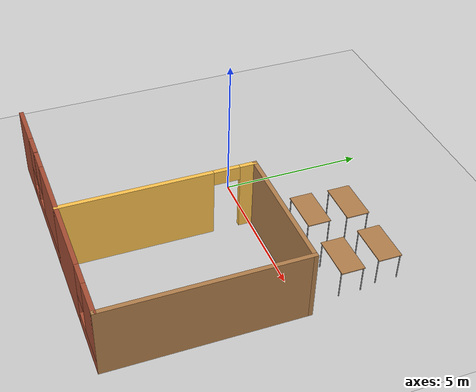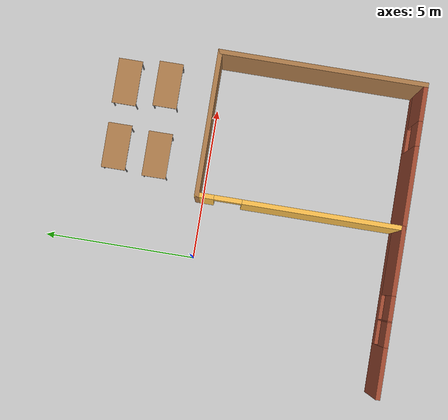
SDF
<sdf version="1.6">
 <world name="default">
  <model name="my_room">
   <link name="Wall_4">
    <pose>-0.749836 -6.5188 0 0 -0 0</pose>
    <visual name="Wall_4_Visual_1">
     <pose>0.819721 0 0.25 0 -0 0</pose>
     <geometry><box><size>3.86056 0.15 0.5</size></box></geometry>
     <material>
      <script><uri>file://media/materials/scripts/gazebo.material</uri><name>Gazebo/Bricks</name></script>
      <ambient>1 1 1 1</ambient>
      <shader type="pixel"/>
      <diffuse>1 1 1 1</diffuse>
      <specular>0.2 0.2 0.2 1</specular>
      <emissive>0 0 0 1</emissive>
     </material>
     <meta><layer>0</layer></meta>
    </visual>
    <visual name="Wall_4_Visual_2">
     <pose>-0.293106 0 1.5 0 -0 0</pose>
     <geometry><box><size>0.034904 0.15 2</size></box></geometry>
     <material>
      <script><uri>file://media/materials/scripts/gazebo.material</uri><name>Gazebo/Bricks</name></script>
      <ambient>1 1 1 1</ambient>
      <shader type="pixel"/>
      <diffuse>1 1 1 1</diffuse>
      <specular>0.2 0.2 0.2 1</specular>
      <emissive>0 0 0 1</emissive>
     </material>
     <meta><layer>0</layer></meta>
    </visual>
    <visual name="Wall_4_Visual_3">
     <pose>1.63717 0 1.5 0 -0 0</pose>
     <geometry><box><size>2.22565 0.15 2</size></box></geometry>
     <material>
      <script><uri>file://media/materials/scripts/gazebo.material</uri><name>Gazebo/Bricks</name></script>
      <ambient>1 1 1 1</ambient>
      <shader type="pixel"/>
      <diffuse>1 1 1 1</diffuse>
      <specular>0.2 0.2 0.2 1</specular>
      <emissive>0 0 0 1</emissive>
     </material>
     <meta><layer>0</layer></meta>
    </visual>
    <visual name="Wall_4_Visual_0">
     <pose>-1.93028 0 1.25 0 -0 0</pose>
     <geometry><box><size>1.63944 0.15 2.5</size></box></geometry>
     <material>
      <script><uri>file://media/materials/scripts/gazebo.material</uri><name>Gazebo/Bricks</name></script>
      <ambient>1 1 1 1</ambient>
      <shader type="pixel"/>
      <diffuse>1 1 1 1</diffuse>
      <specular>0.2 0.2 0.2 1</specular>
      <emissive>0 0 0 1</emissive>
     </material>
     <meta><layer>0</layer></meta>
    </visual>
    <visual name="Wall_4_Visual_4">
     <pose>-0.710558 0 1.9 0 -0 0</pose>
     <geometry><box><size>0.8 0.15 1.2</size></box></geometry>
     <material>
      <script><uri>file://media/materials/scripts/gazebo.material</uri><name>Gazebo/Bricks</name></script>
      <ambient>1 1 1 1</ambient>
      <shader type="pixel"/>
      <diffuse>1 1 1 1</diffuse>
      <specular>0.2 0.2 0.2 1</specular>
      <emissive>0 0 0 1</emissive>
     </material>
     <meta><layer>0</layer></meta>
    </visual>
    <visual name="Wall_4_Visual_5">
     <pose>0.124346 0 1.9 0 -0 0</pose>
     <geometry><box><size>0.8 0.15 1.2</size></box></geometry>
     <material>
      <script><uri>file://media/materials/scripts/gazebo.material</uri><name>Gazebo/Bricks</name></script>
      <ambient>1 1 1 1</ambient>
      <shader type="pixel"/>
      <diffuse>1 1 1 1</diffuse>
      <specular>0.2 0.2 0.2 1</specular>
      <emissive>0 0 0 1</emissive>
     </material>
     <meta><layer>0</layer></meta>
    </visual>
    <collision name="Wall_4_Collision_5">
     <pose>0.124346 0 1.9 0 -0 0</pose>
     <geometry><box><size>0.8 0.15 1.2</size></box></geometry>
     <surface>
      <friction>
       <ode><mu>1</mu><mu2>1</mu2><fdir1>0 0 0</fdir1><slip1>0</slip1><slip2>0</slip2></ode>
       <torsional>
        <coefficient>1</coefficient>
        <patch_radius>0</patch_radius>
        <surface_radius>0</surface_radius>
        <use_patch_radius>1</use_patch_radius>
        <ode><slip>0</slip></ode>
       </torsional>
      </friction>
      <bounce><restitution_coefficient>0</restitution_coefficient><threshold>1e+06</threshold></bounce>
      <contact>
       <collide_without_contact>0</collide_without_contact>
       <collide_without_contact_bitmask>1</collide_without_contact_bitmask>
       <collide_bitmask>1</collide_bitmask>
       <ode>
        <soft_cfm>0</soft_cfm>
        <soft_erp>0.2</soft_erp>
        <kp>1e+13</kp>
        <kd>1</kd>
        <max_vel>0.01</max_vel>
        <min_depth>0</min_depth>
       </ode>
       <bullet>
        <split_impulse>1</split_impulse>
        <split_impulse_penetration_threshold>-0.01</split_impulse_penetration_threshold>
        <soft_cfm>0</soft_cfm>
        <soft_erp>0.2</soft_erp>
        <kp>1e+13</kp>
        <kd>1</kd>
       </bullet>
      </contact>
     </surface>
    </collision>
    <collision name="Wall_4_Collision_0">
     <pose>-1.93028 0 1.25 0 -0 0</pose>
     <geometry><box><size>1.63944 0.15 2.5</size></box></geometry>
     <surface>
      <friction>
       <ode><mu>1</mu><mu2>1</mu2><fdir1>0 0 0</fdir1><slip1>0</slip1><slip2>0</slip2></ode>
       <torsional>
        <coefficient>1</coefficient>
        <patch_radius>0</patch_radius>
        <surface_radius>0</surface_radius>
        <use_patch_radius>1</use_patch_radius>
        <ode><slip>0</slip></ode>
       </torsional>
      </friction>
      <bounce><restitution_coefficient>0</restitution_coefficient><threshold>1e+06</threshold></bounce>
      <contact>
       <collide_without_contact>0</collide_without_contact>
       <collide_without_contact_bitmask>1</collide_without_contact_bitmask>
       <collide_bitmask>1</collide_bitmask>
       <ode>
        <soft_cfm>0</soft_cfm>
        <soft_erp>0.2</soft_erp>
        <kp>1e+13</kp>
        <kd>1</kd>
        <max_vel>0.01</max_vel>
        <min_depth>0</min_depth>
       </ode>
       <bullet>
        <split_impulse>1</split_impulse>
        <split_impulse_penetration_threshold>-0.01</split_impulse_penetration_threshold>
        <soft_cfm>0</soft_cfm>
        <soft_erp>0.2</soft_erp>
        <kp>1e+13</kp>
        <kd>1</kd>
       </bullet>
      </contact>
     </surface>
    </collision>
    <collision name="Wall_4_Collision_1">
     <pose>0.819721 0 0.25 0 -0 0</pose>
     <geometry><box><size>3.86056 0.15 0.5</size></box></geometry>
     <surface>
      <friction>
       <ode><mu>1</mu><mu2>1</mu2><fdir1>0 0 0</fdir1><slip1>0</slip1><slip2>0</slip2></ode>
       <torsional>
        <coefficient>1</coefficient>
        <patch_radius>0</patch_radius>
        <surface_radius>0</surface_radius>
        <use_patch_radius>1</use_patch_radius>
        <ode><slip>0</slip></ode>
       </torsional>
      </friction>
      <bounce><restitution_coefficient>0</restitution_coefficient><threshold>1e+06</threshold></bounce>
      <contact>
       <collide_without_contact>0</collide_without_contact>
       <collide_without_contact_bitmask>1</collide_without_contact_bitmask>
       <collide_bitmask>1</collide_bitmask>
       <ode>
        <soft_cfm>0</soft_cfm>
        <soft_erp>0.2</soft_erp>
        <kp>1e+13</kp>
        <kd>1</kd>
        <max_vel>0.01</max_vel>
        <min_depth>0</min_depth>
       </ode>
       <bullet>
        <split_impulse>1</split_impulse>
        <split_impulse_penetration_threshold>-0.01</split_impulse_penetration_threshold>
        <soft_cfm>0</soft_cfm>
        <soft_erp>0.2</soft_erp>
        <kp>1e+13</kp>
        <kd>1</kd>
       </bullet>
      </contact>
     </surface>
    </collision>
    <collision name="Wall_4_Collision_2">
     <pose>-0.293106 0 1.5 0 -0 0</pose>
     <geometry><box><size>0.034904 0.15 2</size></box></geometry>
     <surface>
      <friction>
       <ode><mu>1</mu><mu2>1</mu2><fdir1>0 0 0</fdir1><slip1>0</slip1><slip2>0</slip2></ode>
       <torsional>
        <coefficient>1</coefficient>
        <patch_radius>0</patch_radius>
        <surface_radius>0</surface_radius>
        <use_patch_radius>1</use_patch_radius>
        <ode><slip>0</slip></ode>
       </torsional>
      </friction>
      <bounce><restitution_coefficient>0</restitution_coefficient><threshold>1e+06</threshold></bounce>
      <contact>
       <collide_without_contact>0</collide_without_contact>
       <collide_without_contact_bitmask>1</collide_without_contact_bitmask>
       <collide_bitmask>1</collide_bitmask>
       <ode>
        <soft_cfm>0</soft_cfm>
        <soft_erp>0.2</soft_erp>
        <kp>1e+13</kp>
        <kd>1</kd>
        <max_vel>0.01</max_vel>
        <min_depth>0</min_depth>
       </ode>
       <bullet>
        <split_impulse>1</split_impulse>
        <split_impulse_penetration_threshold>-0.01</split_impulse_penetration_threshold>
        <soft_cfm>0</soft_cfm>
        <soft_erp>0.2</soft_erp>
        <kp>1e+13</kp>
        <kd>1</kd>
       </bullet>
      </contact>
     </surface>
    </collision>
    <collision name="Wall_4_Collision_4">
     <pose>-0.710558 0 1.9 0 -0 0</pose>
     <geometry><box><size>0.8 0.15 1.2</size></box></geometry>
     <surface>
      <friction>
       <ode><mu>1</mu><mu2>1</mu2><fdir1>0 0 0</fdir1><slip1>0</slip1><slip2>0</slip2></ode>
       <torsional>
        <coefficient>1</coefficient>
        <patch_radius>0</patch_radius>
        <surface_radius>0</surface_radius>
        <use_patch_radius>1</use_patch_radius>
        <ode><slip>0</slip></ode>
       </torsional>
      </friction>
      <bounce><restitution_coefficient>0</restitution_coefficient><threshold>1e+06</threshold></bounce>
      <contact>
       <collide_without_contact>0</collide_without_contact>
       <collide_without_contact_bitmask>1</collide_without_contact_bitmask>
       <collide_bitmask>1</collide_bitmask>
       <ode>
        <soft_cfm>0</soft_cfm>
        <soft_erp>0.2</soft_erp>
        <kp>1e+13</kp>
        <kd>1</kd>
        <max_vel>0.01</max_vel>
        <min_depth>0</min_depth>
       </ode>
       <bullet>
        <split_impulse>1</split_impulse>
        <split_impulse_penetration_threshold>-0.01</split_impulse_penetration_threshold>
        <soft_cfm>0</soft_cfm>
        <soft_erp>0.2</soft_erp>
        <kp>1e+13</kp>
        <kd>1</kd>
       </bullet>
      </contact>
     </surface>
    </collision>
    <collision name="Wall_4_Collision_3">
     <pose>1.63717 0 1.5 0 -0 0</pose>
     <geometry><box><size>2.22565 0.15 2</size></box></geometry>
     <surface>
      <friction>
       <ode><mu>1</mu><mu2>1</mu2><fdir1>0 0 0</fdir1><slip1>0</slip1><slip2>0</slip2></ode>
       <torsional>
        <coefficient>1</coefficient>
        <patch_radius>0</patch_radius>
        <surface_radius>0</surface_radius>
        <use_patch_radius>1</use_patch_radius>
        <ode><slip>0</slip></ode>
       </torsional>
      </friction>
      <bounce><restitution_coefficient>0</restitution_coefficient><threshold>1e+06</threshold></bounce>
      <contact>
       <collide_without_contact>0</collide_without_contact>
       <collide_without_contact_bitmask>1</collide_without_contact_bitmask>
       <collide_bitmask>1</collide_bitmask>
       <ode>
        <soft_cfm>0</soft_cfm>
        <soft_erp>0.2</soft_erp>
        <kp>1e+13</kp>
        <kd>1</kd>
        <max_vel>0.01</max_vel>
        <min_depth>0</min_depth>
       </ode>
       <bullet>
        <split_impulse>1</split_impulse>
        <split_impulse_penetration_threshold>-0.01</split_impulse_penetration_threshold>
        <soft_cfm>0</soft_cfm>
        <soft_erp>0.2</soft_erp>
        <kp>1e+13</kp>
        <kd>1</kd>
       </bullet>
      </contact>
     </surface>
    </collision>
   </link>
   <link name="Wall_5">
    <pose>4.22516 -6.5188 0 0 -0 0</pose>
    <visual name="Wall_5_Visual_0">
     <pose>-1.02319 0 1.25 0 -0 0</pose>
     <geometry><box><size>2.70363 0.15 2.5</size></box></geometry>
     <material>
      <script><uri>file://media/materials/scripts/gazebo.material</uri><name>Gazebo/Bricks</name></script>
      <ambient>1 1 1 1</ambient>
      <shader type="pixel"/>
      <diffuse>1 1 1 1</diffuse>
      <specular>0.2 0.2 0.2 1</specular>
      <emissive>0 0 0 1</emissive>
     </material>
     <meta><layer>0</layer></meta>
    </visual>
    <visual name="Wall_5_Visual_1">
     <pose>1.35181 0 0.25 0 -0 0</pose>
     <geometry><box><size>2.04637 0.15 0.5</size></box></geometry>
     <material>
      <script><uri>file://media/materials/scripts/gazebo.material</uri><name>Gazebo/Bricks</name></script>
      <ambient>1 1 1 1</ambient>
      <shader type="pixel"/>
      <diffuse>1 1 1 1</diffuse>
      <specular>0.2 0.2 0.2 1</specular>
      <emissive>0 0 0 1</emissive>
     </material>
     <meta><layer>0</layer></meta>
    </visual>
    <visual name="Wall_5_Visual_2">
     <pose>1.75181 0 1.5 0 -0 0</pose>
     <geometry><box><size>1.24637 0.15 2</size></box></geometry>
     <material>
      <script><uri>file://media/materials/scripts/gazebo.material</uri><name>Gazebo/Bricks</name></script>
      <ambient>1 1 1 1</ambient>
      <shader type="pixel"/>
      <diffuse>1 1 1 1</diffuse>
      <specular>0.2 0.2 0.2 1</specular>
      <emissive>0 0 0 1</emissive>
     </material>
     <meta><layer>0</layer></meta>
    </visual>
    <visual name="Wall_5_Visual_3">
     <pose>0.728627 0 1.9 0 -0 0</pose>
     <geometry><box><size>0.8 0.15 1.2</size></box></geometry>
     <material>
      <script><uri>file://media/materials/scripts/gazebo.material</uri><name>Gazebo/Bricks</name></script>
      <ambient>1 1 1 1</ambient>
      <shader type="pixel"/>
      <diffuse>1 1 1 1</diffuse>
      <specular>0.2 0.2 0.2 1</specular>
      <emissive>0 0 0 1</emissive>
     </material>
     <meta><layer>0</layer></meta>
    </visual>
    <collision name="Wall_5_Collision_0">
     <pose>-1.02319 0 1.25 0 -0 0</pose>
     <geometry><box><size>2.70363 0.15 2.5</size></box></geometry>
     <surface>
      <friction>
       <ode><mu>1</mu><mu2>1</mu2><fdir1>0 0 0</fdir1><slip1>0</slip1><slip2>0</slip2></ode>
       <torsional>
        <coefficient>1</coefficient>
        <patch_radius>0</patch_radius>
        <surface_radius>0</surface_radius>
        <use_patch_radius>1</use_patch_radius>
        <ode><slip>0</slip></ode>
       </torsional>
      </friction>
      <bounce><restitution_coefficient>0</restitution_coefficient><threshold>1e+06</threshold></bounce>
      <contact>
       <collide_without_contact>0</collide_without_contact>
       <collide_without_contact_bitmask>1</collide_without_contact_bitmask>
       <collide_bitmask>1</collide_bitmask>
       <ode>
        <soft_cfm>0</soft_cfm>
        <soft_erp>0.2</soft_erp>
        <kp>1e+13</kp>
        <kd>1</kd>
        <max_vel>0.01</max_vel>
        <min_depth>0</min_depth>
       </ode>
       <bullet>
        <split_impulse>1</split_impulse>
        <split_impulse_penetration_threshold>-0.01</split_impulse_penetration_threshold>
        <soft_cfm>0</soft_cfm>
        <soft_erp>0.2</soft_erp>
        <kp>1e+13</kp>
        <kd>1</kd>
       </bullet>
      </contact>
     </surface>
    </collision>
    <collision name="Wall_5_Collision_3">
     <pose>0.728627 0 1.9 0 -0 0</pose>
     <geometry><box><size>0.8 0.15 1.2</size></box></geometry>
     <surface>
      <friction>
       <ode><mu>1</mu><mu2>1</mu2><fdir1>0 0 0</fdir1><slip1>0</slip1><slip2>0</slip2></ode>
       <torsional>
        <coefficient>1</coefficient>
        <patch_radius>0</patch_radius>
        <surface_radius>0</surface_radius>
        <use_patch_radius>1</use_patch_radius>
        <ode><slip>0</slip></ode>
       </torsional>
      </friction>
      <bounce><restitution_coefficient>0</restitution_coefficient><threshold>1e+06</threshold></bounce>
      <contact>
       <collide_without_contact>0</collide_without_contact>
       <collide_without_contact_bitmask>1</collide_without_contact_bitmask>
       <collide_bitmask>1</collide_bitmask>
       <ode>
        <soft_cfm>0</soft_cfm>
        <soft_erp>0.2</soft_erp>
        <kp>1e+13</kp>
        <kd>1</kd>
        <max_vel>0.01</max_vel>
        <min_depth>0</min_depth>
       </ode>
       <bullet>
        <split_impulse>1</split_impulse>
        <split_impulse_penetration_threshold>-0.01</split_impulse_penetration_threshold>
        <soft_cfm>0</soft_cfm>
        <soft_erp>0.2</soft_erp>
        <kp>1e+13</kp>
        <kd>1</kd>
       </bullet>
      </contact>
     </surface>
    </collision>
    <collision name="Wall_5_Collision_2">
     <pose>1.75181 0 1.5 0 -0 0</pose>
     <geometry><box><size>1.24637 0.15 2</size></box></geometry>
     <surface>
      <friction>
       <ode><mu>1</mu><mu2>1</mu2><fdir1>0 0 0</fdir1><slip1>0</slip1><slip2>0</slip2></ode>
       <torsional>
        <coefficient>1</coefficient>
        <patch_radius>0</patch_radius>
        <surface_radius>0</surface_radius>
        <use_patch_radius>1</use_patch_radius>
        <ode><slip>0</slip></ode>
       </torsional>
      </friction>
      <bounce><restitution_coefficient>0</restitution_coefficient><threshold>1e+06</threshold></bounce>
      <contact>
       <collide_without_contact>0</collide_without_contact>
       <collide_without_contact_bitmask>1</collide_without_contact_bitmask>
       <collide_bitmask>1</collide_bitmask>
       <ode>
        <soft_cfm>0</soft_cfm>
        <soft_erp>0.2</soft_erp>
        <kp>1e+13</kp>
        <kd>1</kd>
        <max_vel>0.01</max_vel>
        <min_depth>0</min_depth>
       </ode>
       <bullet>
        <split_impulse>1</split_impulse>
        <split_impulse_penetration_threshold>-0.01</split_impulse_penetration_threshold>
        <soft_cfm>0</soft_cfm>
        <soft_erp>0.2</soft_erp>
        <kp>1e+13</kp>
        <kd>1</kd>
       </bullet>
      </contact>
     </surface>
    </collision>
    <collision name="Wall_5_Collision_1">
     <pose>1.35181 0 0.25 0 -0 0</pose>
     <geometry><box><size>2.04637 0.15 0.5</size></box></geometry>
     <surface>
      <friction>
       <ode><mu>1</mu><mu2>1</mu2><fdir1>0 0 0</fdir1><slip1>0</slip1><slip2>0</slip2></ode>
       <torsional>
        <coefficient>1</coefficient>
        <patch_radius>0</patch_radius>
        <surface_radius>0</surface_radius>
        <use_patch_radius>1</use_patch_radius>
        <ode><slip>0</slip></ode>
       </torsional>
      </friction>
      <bounce><restitution_coefficient>0</restitution_coefficient><threshold>1e+06</threshold></bounce>
      <contact>
       <collide_without_contact>0</collide_without_contact>
       <collide_without_contact_bitmask>1</collide_without_contact_bitmask>
       <collide_bitmask>1</collide_bitmask>
       <ode>
        <soft_cfm>0</soft_cfm>
        <soft_erp>0.2</soft_erp>
        <kp>1e+13</kp>
        <kd>1</kd>
        <max_vel>0.01</max_vel>
        <min_depth>0</min_depth>
       </ode>
       <bullet>
        <split_impulse>1</split_impulse>
        <split_impulse_penetration_threshold>-0.01</split_impulse_penetration_threshold>
        <soft_cfm>0</soft_cfm>
        <soft_erp>0.2</soft_erp>
        <kp>1e+13</kp>
        <kd>1</kd>
       </bullet>
      </contact>
     </surface>
    </collision>
   </link>
   <link name="Wall_6">
    <pose>6.52517 -3.2188 0 0 -0 1.5708</pose>
    <visual name="Wall_6_Visual">
     <pose>0 0 1.25 0 -0 0</pose>
     <geometry><box><size>6.75 0.15 2.5</size></box></geometry>
     <material>
      <script><uri>file://media/materials/scripts/gazebo.material</uri><name>Gazebo/Wood</name></script>
      <ambient>1 1 1 1</ambient>
      <shader type="pixel"/>
      <diffuse>1 1 1 1</diffuse>
      <specular>0.2 0.2 0.2 1</specular>
      <emissive>0 0 0 1</emissive>
     </material>
     <meta><layer>0</layer></meta>
    </visual>
    <collision name="Wall_6_Collision">
     <pose>0 0 1.25 0 -0 0</pose>
     <geometry><box><size>6.75 0.15 2.5</size></box></geometry>
     <surface>
      <friction>
       <ode><mu>1</mu><mu2>1</mu2><fdir1>0 0 0</fdir1><slip1>0</slip1><slip2>0</slip2></ode>
       <torsional>
        <coefficient>1</coefficient>
        <patch_radius>0</patch_radius>
        <surface_radius>0</surface_radius>
        <use_patch_radius>1</use_patch_radius>
        <ode><slip>0</slip></ode>
       </torsional>
      </friction>
      <bounce><restitution_coefficient>0</restitution_coefficient><threshold>1e+06</threshold></bounce>
      <contact>
       <collide_without_contact>0</collide_without_contact>
       <collide_without_contact_bitmask>1</collide_without_contact_bitmask>
       <collide_bitmask>1</collide_bitmask>
       <ode>
        <soft_cfm>0</soft_cfm>
        <soft_erp>0.2</soft_erp>
        <kp>1e+13</kp>
        <kd>1</kd>
        <max_vel>0.01</max_vel>
        <min_depth>0</min_depth>
       </ode>
       <bullet>
        <split_impulse>1</split_impulse>
        <split_impulse_penetration_threshold>-0.01</split_impulse_penetration_threshold>
        <soft_cfm>0</soft_cfm>
        <soft_erp>0.2</soft_erp>
        <kp>1e+13</kp>
        <kd>1</kd>
       </bullet>
      </contact>
     </surface>
    </collision>
   </link>
   <link name="Wall_8">
    <pose>4.22516 0.0812 0 0 -0 3.14159</pose>
    <visual name="Wall_8_Visual">
     <pose>0 0 1.25 0 -0 0</pose>
     <geometry><box><size>4.75 0.15 2.5</size></box></geometry>
     <material>
      <script><uri>file://media/materials/scripts/gazebo.material</uri><name>Gazebo/Wood</name></script>
      <ambient>1 1 1 1</ambient>
      <shader type="pixel"/>
      <diffuse>1 1 1 1</diffuse>
      <specular>0.2 0.2 0.2 1</specular>
      <emissive>0 0 0 1</emissive>
     </material>
     <meta><layer>0</layer></meta>
    </visual>
    <collision name="Wall_8_Collision">
     <pose>0 0 1.25 0 -0 0</pose>
     <geometry><box><size>4.75 0.15 2.5</size></box></geometry>
     <surface>
      <friction>
       <ode><mu>1</mu><mu2>1</mu2><fdir1>0 0 0</fdir1><slip1>0</slip1><slip2>0</slip2></ode>
       <torsional>
        <coefficient>1</coefficient>
        <patch_radius>0</patch_radius>
        <surface_radius>0</surface_radius>
        <use_patch_radius>1</use_patch_radius>
        <ode><slip>0</slip></ode>
       </torsional>
      </friction>
      <bounce><restitution_coefficient>0</restitution_coefficient><threshold>1e+06</threshold></bounce>
      <contact>
       <collide_without_contact>0</collide_without_contact>
       <collide_without_contact_bitmask>1</collide_without_contact_bitmask>
       <collide_bitmask>1</collide_bitmask>
       <ode>
        <soft_cfm>0</soft_cfm>
        <soft_erp>0.2</soft_erp>
        <kp>1e+13</kp>
        <kd>1</kd>
        <max_vel>0.01</max_vel>
        <min_depth>0</min_depth>
       </ode>
       <bullet>
        <split_impulse>1</split_impulse>
        <split_impulse_penetration_threshold>-0.01</split_impulse_penetration_threshold>
        <soft_cfm>0</soft_cfm>
        <soft_erp>0.2</soft_erp>
        <kp>1e+13</kp>
        <kd>1</kd>
       </bullet>
      </contact>
     </surface>
    </collision>
   </link>
   <link name="Wall_9">
    <pose>1.92516 -3.2188 0 0 0 -1.5708</pose>
    <visual name="Wall_9_Visual_0">
     <pose>-3.06567 0 1.25 0 -0 0</pose>
     <geometry><box><size>0.618661 0.15 2.5</size></box></geometry>
     <material>
      <script><uri>file://media/materials/scripts/gazebo.material</uri><name>Gazebo/Grey</name></script>
      <ambient>1 0.764706 0.305882 1</ambient>
      <shader type="pixel"/>
      <diffuse>0.7 0.7 0.7 1</diffuse>
      <specular>0.01 0.01 0.01 1</specular>
      <emissive>0 0 0 1</emissive>
     </material>
     <meta><layer>0</layer></meta>
    </visual>
    <visual name="Wall_9_Visual_1">
     <pose>0.75933 0 1.25 0 -0 0</pose>
     <geometry><box><size>5.23134 0.15 2.5</size></box></geometry>
     <material>
      <script><uri>file://media/materials/scripts/gazebo.material</uri><name>Gazebo/Grey</name></script>
      <ambient>1 0.764706 0.305882 1</ambient>
      <shader type="pixel"/>
      <diffuse>0.7 0.7 0.7 1</diffuse>
      <specular>0.01 0.01 0.01 1</specular>
      <emissive>0 0 0 1</emissive>
     </material>
     <meta><layer>0</layer></meta>
    </visual>
    <visual name="Wall_9_Visual_2">
     <pose>-2.30634 0 2.25 0 -0 0</pose>
     <geometry><box><size>0.9 0.15 0.5</size></box></geometry>
     <material>
      <script><uri>file://media/materials/scripts/gazebo.material</uri><name>Gazebo/Grey</name></script>
      <ambient>1 0.764706 0.305882 1</ambient>
      <shader type="pixel"/>
      <diffuse>0.7 0.7 0.7 1</diffuse>
      <specular>0.01 0.01 0.01 1</specular>
      <emissive>0 0 0 1</emissive>
     </material>
     <meta><layer>0</layer></meta>
    </visual>
    <collision name="Wall_9_Collision_0">
     <pose>-3.06567 0 1.25 0 -0 0</pose>
     <geometry><box><size>0.618661 0.15 2.5</size></box></geometry>
     <surface>
      <friction>
       <ode><mu>1</mu><mu2>1</mu2><fdir1>0 0 0</fdir1><slip1>0</slip1><slip2>0</slip2></ode>
       <torsional>
        <coefficient>1</coefficient>
        <patch_radius>0</patch_radius>
        <surface_radius>0</surface_radius>
        <use_patch_radius>1</use_patch_radius>
        <ode><slip>0</slip></ode>
       </torsional>
      </friction>
      <bounce><restitution_coefficient>0</restitution_coefficient><threshold>1e+06</threshold></bounce>
      <contact>
       <collide_without_contact>0</collide_without_contact>
       <collide_without_contact_bitmask>1</collide_without_contact_bitmask>
       <collide_bitmask>1</collide_bitmask>
       <ode>
        <soft_cfm>0</soft_cfm>
        <soft_erp>0.2</soft_erp>
        <kp>1e+13</kp>
        <kd>1</kd>
        <max_vel>0.01</max_vel>
        <min_depth>0</min_depth>
       </ode>
       <bullet>
        <split_impulse>1</split_impulse>
        <split_impulse_penetration_threshold>-0.01</split_impulse_penetration_threshold>
        <soft_cfm>0</soft_cfm>
        <soft_erp>0.2</soft_erp>
        <kp>1e+13</kp>
        <kd>1</kd>
       </bullet>
      </contact>
     </surface>
    </collision>
    <collision name="Wall_9_Collision_1">
     <pose>0.75933 0 1.25 0 -0 0</pose>
     <geometry><box><size>5.23134 0.15 2.5</size></box></geometry>
     <surface>
      <friction>
       <ode><mu>1</mu><mu2>1</mu2><fdir1>0 0 0</fdir1><slip1>0</slip1><slip2>0</slip2></ode>
       <torsional>
        <coefficient>1</coefficient>
        <patch_radius>0</patch_radius>
        <surface_radius>0</surface_radius>
        <use_patch_radius>1</use_patch_radius>
        <ode><slip>0</slip></ode>
       </torsional>
      </friction>
      <bounce><restitution_coefficient>0</restitution_coefficient><threshold>1e+06</threshold></bounce>
      <contact>
       <collide_without_contact>0</collide_without_contact>
       <collide_without_contact_bitmask>1</collide_without_contact_bitmask>
       <collide_bitmask>1</collide_bitmask>
       <ode>
        <soft_cfm>0</soft_cfm>
        <soft_erp>0.2</soft_erp>
        <kp>1e+13</kp>
        <kd>1</kd>
        <max_vel>0.01</max_vel>
        <min_depth>0</min_depth>
       </ode>
       <bullet>
        <split_impulse>1</split_impulse>
        <split_impulse_penetration_threshold>-0.01</split_impulse_penetration_threshold>
        <soft_cfm>0</soft_cfm>
        <soft_erp>0.2</soft_erp>
        <kp>1e+13</kp>
        <kd>1</kd>
       </bullet>
      </contact>
     </surface>
    </collision>
    <collision name="Wall_9_Collision_2">
     <pose>-2.30634 0 2.25 0 -0 0</pose>
     <geometry><box><size>0.9 0.15 0.5</size></box></geometry>
     <surface>
      <friction>
       <ode><mu>1</mu><mu2>1</mu2><fdir1>0 0 0</fdir1><slip1>0</slip1><slip2>0</slip2></ode>
       <torsional>
        <coefficient>1</coefficient>
        <patch_radius>0</patch_radius>
        <surface_radius>0</surface_radius>
        <use_patch_radius>1</use_patch_radius>
        <ode><slip>0</slip></ode>
       </torsional>
      </friction>
      <bounce><restitution_coefficient>0</restitution_coefficient><threshold>1e+06</threshold></bounce>
      <contact>
       <collide_without_contact>0</collide_without_contact>
       <collide_without_contact_bitmask>1</collide_without_contact_bitmask>
       <collide_bitmask>1</collide_bitmask>
       <ode>
        <soft_cfm>0</soft_cfm>
        <soft_erp>0.2</soft_erp>
        <kp>1e+13</kp>
        <kd>1</kd>
        <max_vel>0.01</max_vel>
        <min_depth>0</min_depth>
       </ode>
       <bullet>
        <split_impulse>1</split_impulse>
        <split_impulse_penetration_threshold>-0.01</split_impulse_penetration_threshold>
        <soft_cfm>0</soft_cfm>
        <soft_erp>0.2</soft_erp>
        <kp>1e+13</kp>
        <kd>1</kd>
       </bullet>
      </contact>
     </surface>
    </collision>
   </link>
   <static>1</static>
   <pose>0.007918 0.078539 0 0 -0 0</pose>
  </model>
  <model name="table_5">
   <static>1</static>
   <link name="link">
    <collision name="surface">
     <pose>0 0 1 0 -0 0</pose>
     <geometry><box><size>1.5 0.8 0.03</size></box></geometry>
     <surface><friction><ode><mu>0.6</mu><mu2>0.6</mu2></ode></friction></surface>
    </collision>
    <visual name="visual1">
     <pose>0 0 1 0 -0 0</pose>
     <geometry><box><size>1.5 0.8 0.03</size></box></geometry>
     <material>
      <script><uri>file://media/materials/scripts/gazebo.material</uri><name>Gazebo/Wood</name></script>
     </material>
    </visual>
    <collision name="front_left_leg">
     <pose>0.68 0.38 0.5 0 -0 0</pose>
     <geometry><cylinder><radius>0.02</radius><length>1</length></cylinder></geometry>
    </collision>
    <visual name="front_left_leg">
     <pose>0.68 0.38 0.5 0 -0 0</pose>
     <geometry><cylinder><radius>0.02</radius><length>1</length></cylinder></geometry>
     <material>
      <script><uri>file://media/materials/scripts/gazebo.material</uri><name>Gazebo/Grey</name></script>
     </material>
    </visual>
    <collision name="front_right_leg">
     <pose>0.68 -0.38 0.5 0 -0 0</pose>
     <geometry><cylinder><radius>0.02</radius><length>1</length></cylinder></geometry>
    </collision>
    <visual name="front_right_leg">
     <pose>0.68 -0.38 0.5 0 -0 0</pose>
     <geometry><cylinder><radius>0.02</radius><length>1</length></cylinder></geometry>
     <material>
      <script><uri>file://media/materials/scripts/gazebo.material</uri><name>Gazebo/Grey</name></script>
     </material>
    </visual>
    <collision name="back_right_leg">
     <pose>-0.68 -0.38 0.5 0 -0 0</pose>
     <geometry><cylinder><radius>0.02</radius><length>1</length></cylinder></geometry>
    </collision>
    <visual name="back_right_leg">
     <pose>-0.68 -0.38 0.5 0 -0 0</pose>
     <geometry><cylinder><radius>0.02</radius><length>1</length></cylinder></geometry>
     <material>
      <script><uri>file://media/materials/scripts/gazebo.material</uri><name>Gazebo/Grey</name></script>
     </material>
    </visual>
    <collision name="back_left_leg">
     <pose>-0.68 0.38 0.5 0 -0 0</pose>
     <geometry><cylinder><radius>0.02</radius><length>1</length></cylinder></geometry>
    </collision>
    <visual name="back_left_leg">
     <pose>-0.68 0.38 0.5 0 -0 0</pose>
     <geometry><cylinder><radius>0.02</radius><length>1</length></cylinder></geometry>
     <material>
      <script><uri>file://media/materials/scripts/gazebo.material</uri><name>Gazebo/Grey</name></script>
     </material>
    </visual>
   </link>
   <pose>5.46803 1.72687 0 0 -0 0</pose>
  </model>
  <model name="table_7">
   <static>1</static>
   <link name="link">
    <collision name="surface">
     <pose>0 0 1 0 -0 0</pose>
     <geometry><box><size>1.5 0.8 0.03</size></box></geometry>
     <surface><friction><ode><mu>0.6</mu><mu2>0.6</mu2></ode></friction></surface>
    </collision>
    <visual name="visual1">
     <pose>0 0 1 0 -0 0</pose>
     <geometry><box><size>1.5 0.8 0.03</size></box></geometry>
     <material>
      <script><uri>file://media/materials/scripts/gazebo.material</uri><name>Gazebo/Wood</name></script>
     </material>
    </visual>
    <collision name="front_left_leg">
     <pose>0.68 0.38 0.5 0 -0 0</pose>
     <geometry><cylinder><radius>0.02</radius><length>1</length></cylinder></geometry>
    </collision>
    <visual name="front_left_leg">
     <pose>0.68 0.38 0.5 0 -0 0</pose>
     <geometry><cylinder><radius>0.02</radius><length>1</length></cylinder></geometry>
     <material>
      <script><uri>file://media/materials/scripts/gazebo.material</uri><name>Gazebo/Grey</name></script>
     </material>
    </visual>
    <collision name="front_right_leg">
     <pose>0.68 -0.38 0.5 0 -0 0</pose>
     <geometry><cylinder><radius>0.02</radius><length>1</length></cylinder></geometry>
    </collision>
    <visual name="front_right_leg">
     <pose>0.68 -0.38 0.5 0 -0 0</pose>
     <geometry><cylinder><radius>0.02</radius><length>1</length></cylinder></geometry>
     <material>
      <script><uri>file://media/materials/scripts/gazebo.material</uri><name>Gazebo/Grey</name></script>
     </material>
    </visual>
    <collision name="back_right_leg">
     <pose>-0.68 -0.38 0.5 0 -0 0</pose>
     <geometry><cylinder><radius>0.02</radius><length>1</length></cylinder></geometry>
    </collision>
    <visual name="back_right_leg">
     <pose>-0.68 -0.38 0.5 0 -0 0</pose>
     <geometry><cylinder><radius>0.02</radius><length>1</length></cylinder></geometry>
     <material>
      <script><uri>file://media/materials/scripts/gazebo.material</uri><name>Gazebo/Grey</name></script>
     </material>
    </visual>
    <collision name="back_left_leg">
     <pose>-0.68 0.38 0.5 0 -0 0</pose>
     <geometry><cylinder><radius>0.02</radius><length>1</length></cylinder></geometry>
    </collision>
    <visual name="back_left_leg">
     <pose>-0.68 0.38 0.5 0 -0 0</pose>
     <geometry><cylinder><radius>0.02</radius><length>1</length></cylinder></geometry>
     <material>
      <script><uri>file://media/materials/scripts/gazebo.material</uri><name>Gazebo/Grey</name></script>
     </material>
    </visual>
   </link>
   <pose>3.1234 1.69939 0 0 -0 0</pose>
  </model>
  <model name="table_8">
   <static>1</static>
   <link name="link">
    <collision name="surface">
     <pose>0 0 1 0 -0 0</pose>
     <geometry><box><size>1.5 0.8 0.03</size></box></geometry>
     <surface><friction><ode><mu>0.6</mu><mu2>0.6</mu2></ode></friction></surface>
    </collision>
    <visual name="visual1">
     <pose>0 0 1 0 -0 0</pose>
     <geometry><box><size>1.5 0.8 0.03</size></box></geometry>
     <material>
      <script><uri>file://media/materials/scripts/gazebo.material</uri><name>Gazebo/Wood</name></script>
     </material>
    </visual>
    <collision name="front_left_leg">
     <pose>0.68 0.38 0.5 0 -0 0</pose>
     <geometry><cylinder><radius>0.02</radius><length>1</length></cylinder></geometry>
    </collision>
    <visual name="front_left_leg">
     <pose>0.68 0.38 0.5 0 -0 0</pose>
     <geometry><cylinder><radius>0.02</radius><length>1</length></cylinder></geometry>
     <material>
      <script><uri>file://media/materials/scripts/gazebo.material</uri><name>Gazebo/Grey</name></script>
     </material>
    </visual>
    <collision name="front_right_leg">
     <pose>0.68 -0.38 0.5 0 -0 0</pose>
     <geometry><cylinder><radius>0.02</radius><length>1</length></cylinder></geometry>
    </collision>
    <visual name="front_right_leg">
     <pose>0.68 -0.38 0.5 0 -0 0</pose>
     <geometry><cylinder><radius>0.02</radius><length>1</length></cylinder></geometry>
     <material>
      <script><uri>file://media/materials/scripts/gazebo.material</uri><name>Gazebo/Grey</name></script>
     </material>
    </visual>
    <collision name="back_right_leg">
     <pose>-0.68 -0.38 0.5 0 -0 0</pose>
     <geometry><cylinder><radius>0.02</radius><length>1</length></cylinder></geometry>
    </collision>
    <visual name="back_right_leg">
     <pose>-0.68 -0.38 0.5 0 -0 0</pose>
     <geometry><cylinder><radius>0.02</radius><length>1</length></cylinder></geometry>
     <material>
      <script><uri>file://media/materials/scripts/gazebo.material</uri><name>Gazebo/Grey</name></script>
     </material>
    </visual>
    <collision name="back_left_leg">
     <pose>-0.68 0.38 0.5 0 -0 0</pose>
     <geometry><cylinder><radius>0.02</radius><length>1</length></cylinder></geometry>
    </collision>
    <visual name="back_left_leg">
     <pose>-0.68 0.38 0.5 0 -0 0</pose>
     <geometry><cylinder><radius>0.02</radius><length>1</length></cylinder></geometry>
     <material>
      <script><uri>file://media/materials/scripts/gazebo.material</uri><name>Gazebo/Grey</name></script>
     </material>
    </visual>
   </link>
   <pose>3.19071 3.06303 0 0 -0 0</pose>
  </model>
  <model name="ground_plane">
   <static>1</static>
   <link name="link">
    <collision name="collision">
     <geometry><plane><normal>0 0 1</normal><size>100 100</size></plane></geometry>
     <surface><friction><ode><mu>100</mu><mu2>50</mu2></ode></friction></surface>
    </collision>
    <visual name="visual">
     <cast_shadows>0</cast_shadows>
     <geometry><plane><normal>0 0 1</normal><size>100 100</size></plane></geometry>
     <material>
      <script><uri>file://media/materials/scripts/gazebo.material</uri><name>Gazebo/Grey</name></script>
     </material>
    </visual>
   </link>
   <pose>0.471217 -2.88314 0 0 -0 0</pose>
  </model>
  <model name="table_3">
   <static>1</static>
   <link name="link">
    <collision name="surface">
     <pose>0 0 1 0 -0 0</pose>
     <geometry><box><size>1.5 0.8 0.03</size></box></geometry>
     <surface><friction><ode><mu>0.6</mu><mu2>0.6</mu2></ode></friction></surface>
    </collision>
    <visual name="visual1">
     <pose>0 0 1 0 -0 0</pose>
     <geometry><box><size>1.5 0.8 0.03</size></box></geometry>
     <material>
      <script><uri>file://media/materials/scripts/gazebo.material</uri><name>Gazebo/Wood</name></script>
     </material>
    </visual>
    <collision name="front_left_leg">
     <pose>0.68 0.38 0.5 0 -0 0</pose>
     <geometry><cylinder><radius>0.02</radius><length>1</length></cylinder></geometry>
    </collision>
    <visual name="front_left_leg">
     <pose>0.68 0.38 0.5 0 -0 0</pose>
     <geometry><cylinder><radius>0.02</radius><length>1</length></cylinder></geometry>
     <material>
      <script><uri>file://media/materials/scripts/gazebo.material</uri><name>Gazebo/Grey</name></script>
     </material>
    </visual>
    <collision name="front_right_leg">
     <pose>0.68 -0.38 0.5 0 -0 0</pose>
     <geometry><cylinder><radius>0.02</radius><length>1</length></cylinder></geometry>
    </collision>
    <visual name="front_right_leg">
     <pose>0.68 -0.38 0.5 0 -0 0</pose>
     <geometry><cylinder><radius>0.02</radius><length>1</length></cylinder></geometry>
     <material>
      <script><uri>file://media/materials/scripts/gazebo.material</uri><name>Gazebo/Grey</name></script>
     </material>
    </visual>
    <collision name="back_right_leg">
     <pose>-0.68 -0.38 0.5 0 -0 0</pose>
     <geometry><cylinder><radius>0.02</radius><length>1</length></cylinder></geometry>
    </collision>
    <visual name="back_right_leg">
     <pose>-0.68 -0.38 0.5 0 -0 0</pose>
     <geometry><cylinder><radius>0.02</radius><length>1</length></cylinder></geometry>
     <material>
      <script><uri>file://media/materials/scripts/gazebo.material</uri><name>Gazebo/Grey</name></script>
     </material>
    </visual>
    <collision name="back_left_leg">
     <pose>-0.68 0.38 0.5 0 -0 0</pose>
     <geometry><cylinder><radius>0.02</radius><length>1</length></cylinder></geometry>
    </collision>
    <visual name="back_left_leg">
     <pose>-0.68 0.38 0.5 0 -0 0</pose>
     <geometry><cylinder><radius>0.02</radius><length>1</length></cylinder></geometry>
     <material>
      <script><uri>file://media/materials/scripts/gazebo.material</uri><name>Gazebo/Grey</name></script>
     </material>
    </visual>
   </link>
   <pose>5.34808 3.06943 0 0 -0 0</pose>
  </model>
 </world>
</sdf>
